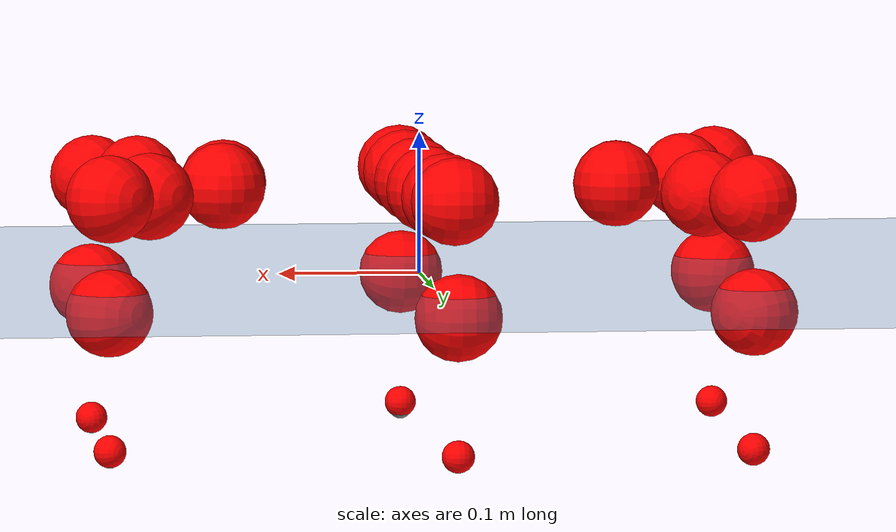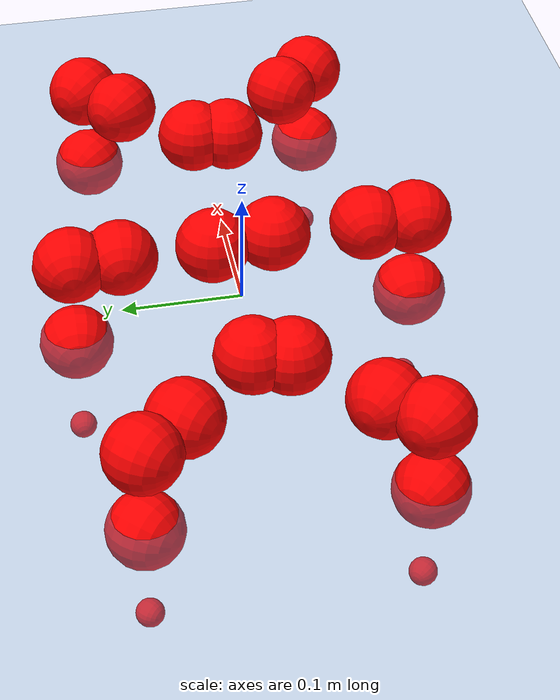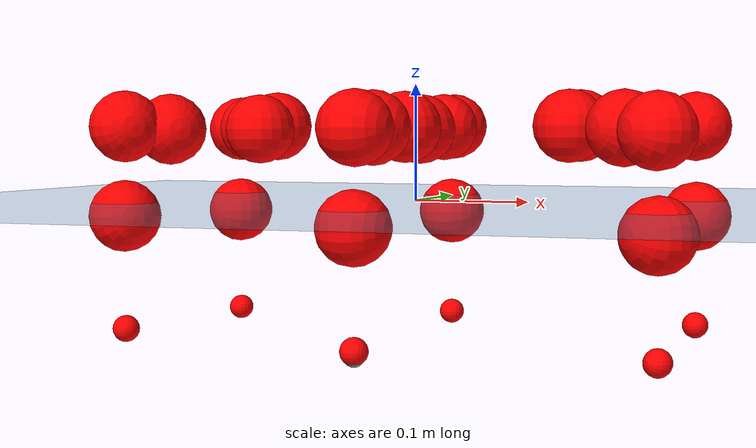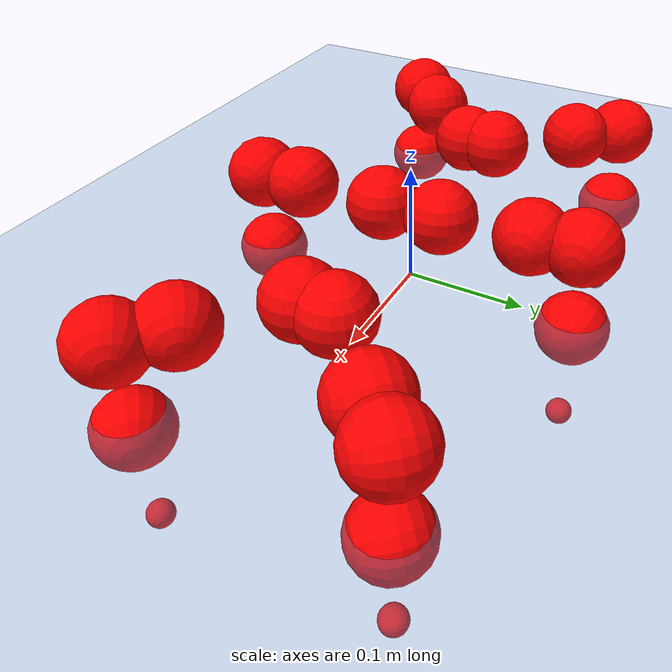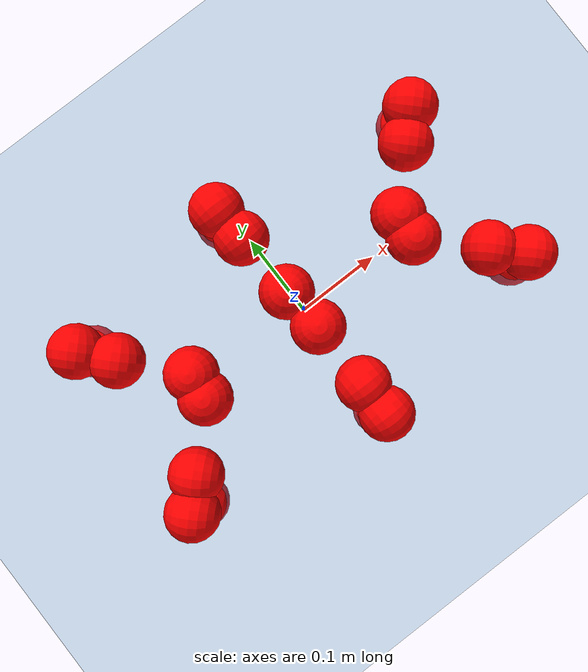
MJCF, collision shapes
<mujoco model="Golem">
  <compiler angle="radian" assetdir="assets" balanceinertia="true" inertiafromgeom="false"/>

  <option timestep="0.005" density="1.2" viscosity="2e-05"/>

  <size nkey="1"/>

  <visual>
    <quality shadowsize="8192"/>
    <map shadowclip="0.5"/>
  </visual>

  <default>
    <default class="/">
      <joint armature="0.01" damping="0.01" frictionloss="0.01"/>
      <geom contype="0" conaffinity="0" group="1" solref="-1000 -80"/>
      <site size="0.01 0.005 0.005" group="5"/>
      <general forcelimited="true" biastype="affine" gainprm="25" biasprm="0 -25 -0.5"/>
      <default class="visual">
        <geom type="mesh" group="2"/>
      </default>
      <default class="collision">
        <geom group="3"/>
      </default>
      <default class="foot">
        <geom size="0.01 0 0" condim="6" group="4" priority="1" solimp="0.015 1 0.01"/>
      </default>
      <default class="reward_collision_sphere">
        <geom group="5" rgba="1 0 0 1"/>
      </default>
    </default>
  </default>

  <asset>
    <texture type="skybox" colorspace="auto" name="//unnamed_texture_0" builtin="gradient" rgb1="0.95 0.95 0.95" rgb2="0.95 0.95 0.95" width="100" height="600"/>
    <texture type="2d" colorspace="auto" name="texplane" builtin="checker" rgb1="0.345 0.575 0.748" rgb2="0.345 0.575 0.748" markrgb="1 1 1" width="512" height="512"/>
    <material name="MatPlane" class="/" texture="texplane" texuniform="true" texrepeat="2 2" specular="0.9"/>
    <mesh name="body" class="/" file="body.stl" scale="0.001 0.001 0.001"/>
    <mesh name="coxa" class="/" file="coxa.stl" scale="0.001 0.001 0.001"/>
    <mesh name="femur" class="/" file="femur.stl" scale="0.001 0.001 0.001"/>
    <mesh name="tibia" class="/" file="tibia.stl" scale="0.001 0.001 0.001"/>
    <mesh name="tarsus" class="/" file="tarsus.stl" scale="0.001 0.001 0.001"/>
  </asset>

  <worldbody>
    <geom name="floor" class="/" size="100 100 0.125" type="plane" group="0" material="MatPlane"/>
    <light name="toplight_shadow" class="/" pos="0 0 5" dir="0.0990148 0.0990148 -0.990148" type="directional" ambient="0.04 0.04 0.04" diffuse="0.55 0.55 0.55" specular="0.12 0.12 0.12"/>
    <light name="toplight_fill" class="/" pos="0 0 5" dir="0.0990148 0.0990148 -0.990148" type="directional" castshadow="false" ambient="0.04 0.04 0.04" diffuse="0.3 0.3 0.3" specular="0.08 0.08 0.08"/>
    <body name="trunk" pos="-0.000242679 0.000191637 -0.00105029" quat="0.999999 -0.000297814 -0.000517211 0.00116483">
      <inertial pos="-0.000477735 -0.00100122 -0.00288048" quat="1 -0.000331474 -0.000105521 -4.61476e-05" mass="1.69055" diaginertia="0.00566221 8.75195e-05 0.00991457"/>
      <joint name="//unnamed_joint_0" type="free"/>
      <geom name="//unnamed_geom_1" class="/" pos="0 0 0.0640318" quat="1 0 0 0" type="mesh" rgba="0.9 0.9 0.9 1" mesh="body"/>
      <site name="imu" class="/" pos="0.129499 -0.00532895 0.0993536" size="0.00761403"/>
      <camera name="track" class="/" pos="0 -0.778415 0" quat="0.707107 0.707107 0 0" mode="trackcom"/>
      <camera name="ego_camera" class="/" pos="0.116286 0 0.10005" quat="-0.5 -0.5 0.5 0.5"/>
      <body name="coxa_RR" pos="-0.160685 -0.0310727 0.0628108" quat="0.382461 0.000623804 -0.00114025 -0.923971">
        <inertial pos="0.00041716 -0.000371083 0.00266621" quat="0.999971 -0.00742738 -0.00132224 0.000464387" mass="0.0919553" diaginertia="0.00590073 9.2227e-05 0.0102366"/>
        <joint name="coxa_joint_RR" class="/" pos="0 0 0" axis="-0.000735693 0.00188442 -0.999998" range="-3.18222 3.08619" armature="0.00764453" damping="0.00859635" frictionloss="0.00804972"/>
        <geom name="//unnamed_geom_2" class="/" type="mesh" rgba="0.2 0.2 0.2 1" mesh="coxa"/>
        <geom name="//unnamed_geom_3" class="reward_collision_sphere" size="0.0304561" pos="-0.0268351 0 0"/>
        <body name="femur_RR" pos="0.0549544 0.00137331 -0.000100294" quat="0.500267 -0.499785 0.500246 0.499701">
          <inertial pos="-2.56805e-05 -0.000588476 0.00123382" quat="0.999999 -0.000443862 -0.00109671 7.04271e-05" mass="0.088503" diaginertia="0.00572974 8.97715e-05 0.0100872"/>
          <joint name="femur_joint_RR" class="/" pos="0 0 0" axis="0.000791637 -0.00329377 -0.999994" range="-3.08762 3.14831" armature="0.00662656" damping="0" frictionloss="0.00792393"/>
          <geom name="//unnamed_geom_4" class="/" type="mesh" rgba="0.9 0.9 0.9 1" mesh="femur"/>
          <geom name="//unnamed_geom_5" class="reward_collision_sphere" size="0.0304561"/>
          <body name="tibia_RR" pos="-0.00246746 -0.0400359 0.00161996" quat="-0.000187893 1 -0.00084386 0.0002931">
            <inertial pos="0.0023124 0.00142916 -0.000108564" quat="1 -0.000687873 0.000279709 0.000212633" mass="0.090896" diaginertia="0.00578389 8.97356e-05 0.00973301"/>
            <joint name="tibia_joint_RR" class="/" pos="0 0 0" axis="0.00411195 0.012008 0.999919" range="-3.08686 3.14805" armature="0.00679173" damping="0" frictionloss="0.00792125"/>
            <geom name="//unnamed_geom_6" class="/" type="mesh" rgba="0.2 0.2 0.2 1" mesh="tibia"/>
            <geom name="//unnamed_geom_7" class="reward_collision_sphere" size="0.0304561"/>
            <body name="tarsus_RR" pos="0.0759157 0.00146504 -0.00156708" quat="1 -5.62005e-05 0.000107445 7.34716e-05">
              <inertial pos="0.0529557 0.00117327 -0.00128257" quat="0.501468 0.500426 0.500145 0.497955" mass="0.089898" diaginertia="0.00581975 8.90469e-05 0.0102934"/>
              <joint name="tarsus_joint_RR" class="/" pos="0 0 0" axis="-0.00686011 -0.00762536 0.999947" range="-3.14486 3.15217" armature="0.00808073" damping="0" frictionloss="0.00724643"/>
              <geom name="//unnamed_geom_8" class="/" type="mesh" rgba="0.9 0.9 0.9 1" mesh="tarsus"/>
              <geom name="foot_1" class="foot" size="0.00736029" pos="0.100185 0 0" quat="0 -0.707107 0 0.707107"/>
              <geom name="//unnamed_geom_10" class="reward_collision_sphere" size="0.0304561"/>
              <geom name="//unnamed_geom_11" class="reward_collision_sphere" size="0.011421" pos="0.0961593 0 0"/>
              <site name="foot_1" class="foot" pos="0.100185 0 0" quat="0 -0.707107 0 0.707107" size="0.00761403"/>
            </body>
          </body>
        </body>
      </body>
      <body name="coxa_RM" pos="-0.000220605 -0.0527284 0.0645628" quat="0.707379 0.000887631 -0.000900322 -0.706833">
        <inertial pos="0.000799754 -0.00235903 0.00104778" quat="1 0.000407326 0.000462889 0.000469602" mass="0.0865517" diaginertia="0.00560402 8.9781e-05 0.0100828"/>
        <joint name="coxa_joint_RM" class="/" pos="0 0 0" axis="0.00385385 0.0128879 -0.99991" range="-3.13408 3.18457" armature="0.00860022" damping="0" frictionloss="0.00691503"/>
        <geom name="//unnamed_geom_12" class="/" type="mesh" rgba="0.2 0.2 0.2 1" mesh="coxa"/>
        <geom name="//unnamed_geom_13" class="reward_collision_sphere" size="0.0304561" pos="-0.0268351 0 0"/>
        <body name="femur_RM" pos="0.0506157 0.000565987 -0.000536649" quat="0.499908 -0.500006 0.49993 0.500155">
          <inertial pos="0.00139392 -0.00122296 -3.30035e-05" quat="0.999986 -0.00311335 -1.0922e-05 0.00424639" mass="0.0905974" diaginertia="0.0056757 9.15699e-05 0.0102701"/>
          <joint name="femur_joint_RM" class="/" pos="0 0 0" axis="-0.00192402 -0.000561282 -0.999998" stiffness="0.000227649" range="-3.14985 3.12649" armature="0.00746424" damping="0.00905209" frictionloss="0.00823574"/>
          <geom name="//unnamed_geom_14" class="/" type="mesh" rgba="0.9 0.9 0.9 1" mesh="femur"/>
          <geom name="//unnamed_geom_15" class="reward_collision_sphere" size="0.0304561"/>
          <body name="tibia_RM" pos="-7.76837e-05 -0.0400021 0.000294822" quat="4.87224e-05 1 -0.000201489 -0.000114429">
            <inertial pos="-0.000169936 -0.00205139 -0.00253956" quat="0.999927 0.0102078 -7.46351e-05 -0.0064562" mass="0.0883529" diaginertia="0.00594863 9.03605e-05 0.0103846"/>
            <joint name="tibia_joint_RM" class="/" pos="0 0 0" axis="0.00012073 0.00190799 0.999998" stiffness="0.000746137" range="-3.15879 3.13881" armature="0.00851825" damping="0.00396921" frictionloss="0.00861816"/>
            <geom name="//unnamed_geom_16" class="/" type="mesh" rgba="0.2 0.2 0.2 1" mesh="tibia"/>
            <geom name="//unnamed_geom_17" class="reward_collision_sphere" size="0.0304561"/>
            <body name="tarsus_RM" pos="0.077755 0.0001909 0.00147106" quat="1 4.27126e-05 0.000109049 0.000248024">
              <inertial pos="0.0554559 0.000862668 0.000380373" quat="0.50356 0.493848 0.504108 0.498414" mass="0.087256" diaginertia="0.00576318 8.93625e-05 0.00984481"/>
              <joint name="tarsus_joint_RM" class="/" pos="0 0 0" axis="-6.91585e-05 -0.000523475 1" range="-3.08678 3.14798" armature="0.00866549" damping="0.00186312" frictionloss="0.00780242"/>
              <geom name="//unnamed_geom_18" class="/" type="mesh" rgba="0.9 0.9 0.9 1" mesh="tarsus"/>
              <geom name="foot_2" class="foot" size="0.00839863" pos="0.100185 0 0" quat="0 -0.707107 0 0.707107"/>
              <geom name="//unnamed_geom_20" class="reward_collision_sphere" size="0.0304561"/>
              <geom name="//unnamed_geom_21" class="reward_collision_sphere" size="0.011421" pos="0.0961593 0 0"/>
              <site name="foot_2" class="foot" pos="0.100185 0 0" quat="0 -0.707107 0 0.707107" size="0.00761403"/>
            </body>
          </body>
        </body>
      </body>
      <body name="coxa_RF" pos="0.157618 -0.0319066 0.0653537" quat="0.923878 -2.73237e-05 1.61928e-05 -0.382688">
        <inertial pos="-0.0016859 -0.00268938 0.00184105" quat="0.999958 -0.00253957 -0.00758667 -0.00452501" mass="0.0888726" diaginertia="0.00583066 8.77954e-05 0.009985"/>
        <joint name="coxa_joint_RF" class="/" pos="0 0 0" axis="6.33473e-05 0.00213046 -0.999998" range="-3.1386 3.19057" armature="0.00711554" damping="0" frictionloss="0.00780217"/>
        <geom name="//unnamed_geom_22" class="/" type="mesh" rgba="0.2 0.2 0.2 1" mesh="coxa"/>
        <geom name="//unnamed_geom_23" class="reward_collision_sphere" size="0.0304561" pos="-0.0268351 0 0"/>
        <body name="femur_RF" pos="0.055666 -0.000780917 -0.00165753" quat="0.499852 -0.499516 0.499584 0.501047">
          <inertial pos="0.0006363 -0.00222965 0.00268694" quat="0.999913 -0.00408927 0.00516867 0.011385" mass="0.0894872" diaginertia="0.00563358 8.64221e-05 0.0101631"/>
          <joint name="femur_joint_RF" class="/" pos="0 0 0" axis="-0.00170093 -0.00186429 -0.999997" range="-3.10508 3.13673" armature="0.00737782" damping="0" frictionloss="0.00663331"/>
          <geom name="//unnamed_geom_24" class="/" type="mesh" rgba="0.9 0.9 0.9 1" mesh="femur"/>
          <geom name="//unnamed_geom_25" class="reward_collision_sphere" size="0.0304561"/>
          <body name="tibia_RF" pos="0.00192432 -0.0430528 0.000724609" quat="0.000847518 0.999999 -0.000490515 0.00038406">
            <inertial pos="-0.000377319 0.00128466 0.000301735" quat="0.999967 0.00775422 0.00182913 -0.00180964" mass="0.0891201" diaginertia="0.00578915 9.00972e-05 0.0102721"/>
            <joint name="tibia_joint_RF" class="/" pos="0 0 0" axis="0.00126213 -0.0109753 0.999939" range="-3.11681 3.13446" armature="0.00781981" damping="0.00268602" frictionloss="0.00759291"/>
            <geom name="//unnamed_geom_26" class="/" type="mesh" rgba="0.2 0.2 0.2 1" mesh="tibia"/>
            <geom name="//unnamed_geom_27" class="reward_collision_sphere" size="0.0304561"/>
            <body name="tarsus_RF" pos="0.0787864 0.000745587 -0.00067607" quat="0.999999 -0.000514093 4.88459e-05 0.00122766">
              <inertial pos="0.0510325 -0.000130927 0.00262357" quat="0.503768 0.50248 0.502139 0.491516" mass="0.0843912" diaginertia="0.00571857 8.71928e-05 0.00974708"/>
              <joint name="tarsus_joint_RF" class="/" pos="0 0 0" axis="-0.00565909 -0.0139934 0.999886" range="-3.08699 3.1171" armature="0.00765987" damping="0" frictionloss="0.0082303"/>
              <geom name="//unnamed_geom_28" class="/" type="mesh" rgba="0.9 0.9 0.9 1" mesh="tarsus"/>
              <geom name="foot_3" class="foot" size="0.00740068" pos="0.100185 0 0" quat="0 -0.707107 0 0.707107"/>
              <geom name="//unnamed_geom_30" class="reward_collision_sphere" size="0.0304561"/>
              <geom name="//unnamed_geom_31" class="reward_collision_sphere" size="0.011421" pos="0.0961593 0 0"/>
              <site name="foot_3" class="foot" pos="0.100185 0 0" quat="0 -0.707107 0 0.707107" size="0.00761403"/>
            </body>
          </body>
        </body>
      </body>
      <body name="coxa_LR" pos="-0.156851 0.0357219 0.0650428" quat="0.383034 -0.0007313 0.00105165 0.923733">
        <inertial pos="0.0029094 0.000444839 -0.000417038" quat="0.999945 -0.00149974 0.00170977 -0.0102616" mass="0.0873539" diaginertia="0.00564793 8.87035e-05 0.00995534"/>
        <joint name="coxa_joint_LR" class="/" pos="0 0 0" axis="-0.00934856 0.0060233 -0.999938" range="-3.11721 3.13911" armature="0.00768933" damping="0.0071862" frictionloss="0.00750859"/>
        <geom name="//unnamed_geom_32" class="/" type="mesh" rgba="0.2 0.2 0.2 1" mesh="coxa"/>
        <geom name="//unnamed_geom_33" class="reward_collision_sphere" size="0.0304561" pos="-0.0268351 0 0"/>
        <body name="femur_LR" pos="0.0538304 -0.00423384 -0.00165724" quat="0.500378 -0.500949 0.499449 0.499222">
          <inertial pos="-0.000810088 0.000152628 0.000394431" quat="0.999999 -0.000563527 0.000395949 0.0014139" mass="0.0891352" diaginertia="0.00571644 8.92029e-05 0.0100606"/>
          <joint name="femur_joint_LR" class="/" pos="0 0 0" axis="0.000162886 -0.000146064 1" range="-3.13081 3.19108" armature="0.00761256" damping="0" frictionloss="0.00861901"/>
          <geom name="//unnamed_geom_34" class="/" type="mesh" rgba="0.9 0.9 0.9 1" mesh="femur"/>
          <geom name="//unnamed_geom_35" class="reward_collision_sphere" size="0.0304561"/>
          <body name="tibia_LR" pos="0.000575214 -0.045029 -0.00406719" quat="0.000107895 1 0.000179998 0.000155403">
            <inertial pos="-0.000507492 -0.00161834 0.00179093" quat="0.999988 0.000336611 -0.0044868 0.00212787" mass="0.0885526" diaginertia="0.00578929 9.24481e-05 0.0101467"/>
            <joint name="tibia_joint_LR" class="/" pos="0 0 0" axis="-0.00262118 -0.0010248 -0.999996" range="-3.15733 3.08875" armature="0.00664858" damping="0.00122257" frictionloss="0.00735605"/>
            <geom name="//unnamed_geom_36" class="/" type="mesh" rgba="0.2 0.2 0.2 1" mesh="tibia"/>
            <geom name="//unnamed_geom_37" class="reward_collision_sphere" size="0.0304561"/>
            <body name="tarsus_LR" pos="0.0791792 0.00177022 -0.000223541" quat="1 0.000128947 0.000557786 0.000221887">
              <inertial pos="0.0546561 -3.26299e-05 0.000801162" quat="0.501177 0.497688 0.500984 0.500143" mass="0.0867544" diaginertia="0.00565808 8.84775e-05 0.0099514"/>
              <joint name="tarsus_joint_LR" class="/" pos="0 0 0" axis="0.000120607 0.000169232 -1" range="-3.08712 3.13921" armature="0.00770928" damping="0" frictionloss="0.00734823"/>
              <geom name="//unnamed_geom_38" class="/" type="mesh" rgba="0.9 0.9 0.9 1" mesh="tarsus"/>
              <geom name="foot_4" class="foot" size="0.00691348" pos="0.100185 0 0" quat="0.707107 0 -0.707107 0"/>
              <geom name="//unnamed_geom_40" class="reward_collision_sphere" size="0.0304561"/>
              <geom name="//unnamed_geom_41" class="reward_collision_sphere" size="0.011421" pos="0.0961593 0 0"/>
              <site name="foot_4" class="foot" pos="0.100185 0 0" quat="0.707107 0 -0.707107 0" size="0.00761403"/>
            </body>
          </body>
        </body>
      </body>
      <body name="coxa_LM" pos="-0.00395557 0.0510025 0.062733" quat="0.707993 0.000214259 -0.000726806 0.706219">
        <inertial pos="0.000660989 2.80024e-06 0.00202182" quat="0.999999 -0.00133433 6.24576e-05 0.000205218" mass="0.0918451" diaginertia="0.00610834 9.22545e-05 0.0103698"/>
        <joint name="coxa_joint_LM" class="/" pos="0 0 0" axis="0.00101624 0.000984977 -0.999999" stiffness="0.00605291" range="-3.18453 3.15842" armature="0.00694027" damping="0.00517505" frictionloss="0.00843509"/>
        <geom name="//unnamed_geom_42" class="/" type="mesh" rgba="0.2 0.2 0.2 1" mesh="coxa"/>
        <geom name="//unnamed_geom_43" class="reward_collision_sphere" size="0.0304561" pos="-0.0268351 0 0"/>
        <body name="femur_LM" pos="0.048306 0.00350257 0.0014821" quat="0.500004 -0.499998 0.500002 0.499996">
          <inertial pos="0.000111147 -0.00190817 0.0005962" quat="0.999984 0.00441342 -0.00330028 -0.00115764" mass="0.0833647" diaginertia="0.00559812 8.69355e-05 0.00976031"/>
          <joint name="femur_joint_LM" class="/" pos="0 0 0" axis="-0.00552553 -0.00186849 0.999983" range="-3.16054 3.13893" armature="0.007378" damping="0" frictionloss="0.00813785"/>
          <geom name="//unnamed_geom_44" class="/" type="mesh" rgba="0.9 0.9 0.9 1" mesh="femur"/>
          <geom name="//unnamed_geom_45" class="reward_collision_sphere" size="0.0304561"/>
          <body name="tibia_LM" pos="-0.000570035 -0.0400408 0.00291161" quat="-0.000197923 1 -6.61443e-05 8.68504e-05">
            <inertial pos="-0.00261334 0.0007086 -0.000387401" quat="1 1.41995e-05 -2.27997e-05 -0.000223378" mass="0.0894975" diaginertia="0.00549181 8.87039e-05 0.00989102"/>
            <joint name="tibia_joint_LM" class="/" pos="0 0 0" axis="0.000669272 0.00048405 -1" range="-3.1014 3.14176" armature="0.00764288" damping="0.00266001" frictionloss="0.00726606"/>
            <geom name="//unnamed_geom_46" class="/" type="mesh" rgba="0.2 0.2 0.2 1" mesh="tibia"/>
            <geom name="//unnamed_geom_47" class="reward_collision_sphere" size="0.0304561"/>
            <body name="tarsus_LM" pos="0.0802871 -3.26386e-05 -0.00261265" quat="1 -0.000127465 -4.85636e-05 0.000177548">
              <inertial pos="0.0530898 0.000634875 -0.000143094" quat="0.499223 0.499401 0.500484 0.50089" mass="0.0858632" diaginertia="0.00566111 8.83536e-05 0.0101986"/>
              <joint name="tarsus_joint_LM" class="/" pos="0 0 0" axis="0.00310484 -0.00828785 -0.999961" range="-3.15639 3.1014" armature="0.00762288" damping="0.0118093" frictionloss="0.00675644"/>
              <geom name="//unnamed_geom_48" class="/" type="mesh" rgba="0.9 0.9 0.9 1" mesh="tarsus"/>
              <geom name="foot_5" class="foot" size="0.00740892" pos="0.100185 0 0" quat="0.707107 0 -0.707107 0"/>
              <geom name="//unnamed_geom_50" class="reward_collision_sphere" size="0.0304561"/>
              <geom name="//unnamed_geom_51" class="reward_collision_sphere" size="0.011421" pos="0.0961593 0 0"/>
              <site name="foot_5" class="foot" pos="0.100185 0 0" quat="0.707107 0 -0.707107 0" size="0.00761403"/>
            </body>
          </body>
        </body>
      </body>
      <body name="coxa_LF" pos="0.160298 0.0350149 0.065535" quat="0.923799 1.508e-05 -0.000315048 0.382879">
        <inertial pos="0.000714029 -0.00167058 0.000343376" quat="0.999986 -0.00164343 0.00207212 0.00451911" mass="0.0865008" diaginertia="0.00556282 8.43803e-05 0.00979081"/>
        <joint name="coxa_joint_LF" class="/" pos="0 0 0" axis="-0.00935498 0.00178344 -0.999955" range="-3.17237 3.14811" armature="0.00746545" damping="0" frictionloss="0.00784943"/>
        <geom name="//unnamed_geom_52" class="/" type="mesh" rgba="0.2 0.2 0.2 1" mesh="coxa"/>
        <geom name="//unnamed_geom_53" class="reward_collision_sphere" size="0.0304561" pos="-0.0268351 0 0"/>
        <body name="femur_LF" pos="0.0511291 0.00117578 -0.0017617" quat="0.500489 -0.499716 0.499753 0.500042">
          <inertial pos="-0.000702554 0.000655144 0.000588006" quat="0.999913 -0.001106 -0.00814638 0.0102717" mass="0.0884469" diaginertia="0.00579418 8.65372e-05 0.00988652"/>
          <joint name="femur_joint_LF" class="/" pos="0 0 0" axis="-0.00384317 0.0081267 0.99996" range="-3.12898 3.13452" armature="0.00757937" damping="0.00475523" frictionloss="0.00662254"/>
          <geom name="//unnamed_geom_54" class="/" type="mesh" rgba="0.9 0.9 0.9 1" mesh="femur"/>
          <geom name="//unnamed_geom_55" class="reward_collision_sphere" size="0.0304561"/>
          <body name="tibia_LF" pos="-0.00106464 -0.0414045 9.53096e-05" quat="0.000126301 1 -0.000151908 5.67952e-05">
            <inertial pos="-0.000753212 -2.88909e-05 0.000725981" quat="0.999997 0.00119011 0.000117316 0.00227743" mass="0.0897825" diaginertia="0.00578161 8.8598e-05 0.00992496"/>
            <joint name="tibia_joint_LF" class="/" pos="0 0 0" axis="-0.00395438 0.00760329 -0.999963" range="-3.19253 3.14662" armature="0.00786771" damping="0.00771626" frictionloss="0.00701945"/>
            <geom name="//unnamed_geom_56" class="/" type="mesh" rgba="0.2 0.2 0.2 1" mesh="tibia"/>
            <geom name="//unnamed_geom_57" class="reward_collision_sphere" size="0.0304561"/>
            <body name="tarsus_LF" pos="0.0789536 -9.19832e-05 0.000731457" quat="1 1.34588e-05 -9.60449e-05 0.00016056">
              <inertial pos="0.054504 -7.04772e-05 0.0027811" quat="0.499787 0.500919 0.50025 0.499042" mass="0.0897462" diaginertia="0.00569199 8.95967e-05 0.0100387"/>
              <joint name="tarsus_joint_LF" class="/" pos="0 0 0" axis="0.00573112 -0.0108855 -0.999924" stiffness="0.0311551" range="-3.13601 3.15802" armature="0.00752153" damping="0.0246494" frictionloss="0.00740574"/>
              <geom name="//unnamed_geom_58" class="/" type="mesh" rgba="0.9 0.9 0.9 1" mesh="tarsus"/>
              <geom name="foot_6" class="foot" size="0.0076284" pos="0.100185 0 0" quat="0.707107 0 -0.707107 0"/>
              <geom name="//unnamed_geom_60" class="reward_collision_sphere" size="0.0304561"/>
              <geom name="//unnamed_geom_61" class="reward_collision_sphere" size="0.011421" pos="0.0961593 0 0"/>
              <site name="foot_6" class="foot" pos="0.100185 0 0" quat="0.707107 0 -0.707107 0" size="0.00761403"/>
            </body>
          </body>
        </body>
      </body>
    </body>
  </worldbody>

  <contact>
    <pair class="/" geom1="floor" geom2="foot_1" name="//unnamed_contact_0"/>
    <pair class="/" geom1="floor" geom2="foot_2" name="//unnamed_contact_1"/>
    <pair class="/" geom1="floor" geom2="foot_3" name="//unnamed_contact_2"/>
    <pair class="/" geom1="floor" geom2="foot_4" name="//unnamed_contact_3"/>
    <pair class="/" geom1="floor" geom2="foot_5" name="//unnamed_contact_4"/>
    <pair class="/" geom1="floor" geom2="foot_6" name="//unnamed_contact_5"/>
  </contact>

  <actuator>
    <general name="coxa_joint_RR" class="/" joint="coxa_joint_RR" forcerange="-5.94498 5.94498" gainprm="17.347" biasprm="0 -17.347 -0.369575"/>
    <general name="femur_joint_RR" class="/" joint="femur_joint_RR" forcerange="-5.55465 5.55465" gainprm="17.347" biasprm="0 -17.347 -0.369575"/>
    <general name="tibia_joint_RR" class="/" joint="tibia_joint_RR" forcerange="-5.77869 5.77869" gainprm="17.347" biasprm="0 -17.347 -0.369575"/>
    <general name="tarsus_joint_RR" class="/" joint="tarsus_joint_RR" forcerange="-5.35266 5.35266" gainprm="17.347" biasprm="0 -17.347 -0.369575"/>
    <general name="coxa_joint_RM" class="/" joint="coxa_joint_RM" forcerange="-5.95802 5.95802" gainprm="17.347" biasprm="0 -17.347 -0.369575"/>
    <general name="femur_joint_RM" class="/" joint="femur_joint_RM" forcerange="-6.04517 6.04517" gainprm="17.347" biasprm="0 -17.347 -0.369575"/>
    <general name="tibia_joint_RM" class="/" joint="tibia_joint_RM" forcerange="-5.53657 5.53657" gainprm="17.347" biasprm="0 -17.347 -0.369575"/>
    <general name="tarsus_joint_RM" class="/" joint="tarsus_joint_RM" forcerange="-6.10976 6.10976" gainprm="17.347" biasprm="0 -17.347 -0.369575"/>
    <general name="coxa_joint_RF" class="/" joint="coxa_joint_RF" forcerange="-6.09299 6.09299" gainprm="17.347" biasprm="0 -17.347 -0.369575"/>
    <general name="femur_joint_RF" class="/" joint="femur_joint_RF" forcerange="-5.02311 5.02311" gainprm="17.347" biasprm="0 -17.347 -0.369575"/>
    <general name="tibia_joint_RF" class="/" joint="tibia_joint_RF" forcerange="-5.58831 5.58831" gainprm="17.347" biasprm="0 -17.347 -0.369575"/>
    <general name="tarsus_joint_RF" class="/" joint="tarsus_joint_RF" forcerange="-5.65276 5.65276" gainprm="17.347" biasprm="0 -17.347 -0.369575"/>
    <general name="coxa_joint_LR" class="/" joint="coxa_joint_LR" forcerange="-5.65215 5.65215" gainprm="17.347" biasprm="0 -17.347 -0.369575"/>
    <general name="femur_joint_LR" class="/" joint="femur_joint_LR" forcerange="-5.20868 5.20868" gainprm="17.347" biasprm="0 -17.347 -0.369575"/>
    <general name="tibia_joint_LR" class="/" joint="tibia_joint_LR" forcerange="-5.56336 5.56336" gainprm="17.347" biasprm="0 -17.347 -0.369575"/>
    <general name="tarsus_joint_LR" class="/" joint="tarsus_joint_LR" forcerange="-5.66354 5.66354" gainprm="17.347" biasprm="0 -17.347 -0.369575"/>
    <general name="coxa_joint_LM" class="/" joint="coxa_joint_LM" forcerange="-5.58675 5.58675" gainprm="17.347" biasprm="0 -17.347 -0.369575"/>
    <general name="femur_joint_LM" class="/" joint="femur_joint_LM" forcerange="-5.54259 5.54259" gainprm="17.347" biasprm="0 -17.347 -0.369575"/>
    <general name="tibia_joint_LM" class="/" joint="tibia_joint_LM" forcerange="-5.00807 5.00807" gainprm="17.347" biasprm="0 -17.347 -0.369575"/>
    <general name="tarsus_joint_LM" class="/" joint="tarsus_joint_LM" forcerange="-5.53451 5.53451" gainprm="17.347" biasprm="0 -17.347 -0.369575"/>
    <general name="coxa_joint_LF" class="/" joint="coxa_joint_LF" forcerange="-6.05004 6.05004" gainprm="17.347" biasprm="0 -17.347 -0.369575"/>
    <general name="femur_joint_LF" class="/" joint="femur_joint_LF" forcerange="-6.06727 6.06727" gainprm="17.347" biasprm="0 -17.347 -0.369575"/>
    <general name="tibia_joint_LF" class="/" joint="tibia_joint_LF" forcerange="-5.51039 5.51039" gainprm="17.347" biasprm="0 -17.347 -0.369575"/>
    <general name="tarsus_joint_LF" class="/" joint="tarsus_joint_LF" forcerange="-5.76039 5.76039" gainprm="17.347" biasprm="0 -17.347 -0.369575"/>
  </actuator>

  <sensor>
    <gyro site="imu" name="imu_angular_velocity"/>
    <velocimeter site="imu" name="imu_linear_velocity"/>
    <framelinvel objtype="site" objname="foot_1" name="foot_1_global_linear_velocity"/>
    <framelinvel objtype="site" objname="foot_2" name="foot_2_global_linear_velocity"/>
    <framelinvel objtype="site" objname="foot_3" name="foot_3_global_linear_velocity"/>
    <framelinvel objtype="site" objname="foot_4" name="foot_4_global_linear_velocity"/>
    <framelinvel objtype="site" objname="foot_5" name="foot_5_global_linear_velocity"/>
    <framelinvel objtype="site" objname="foot_6" name="foot_6_global_linear_velocity"/>
  </sensor>

  <keyframe>
    <key name="home" qpos="0 0 0.1457 1 0 0 0 0 0 0 0 0 0 0 0 0 0 0 0 0 0 0 0 0 0 0 0 0 0 0 0"/>
  </keyframe>
</mujoco>
